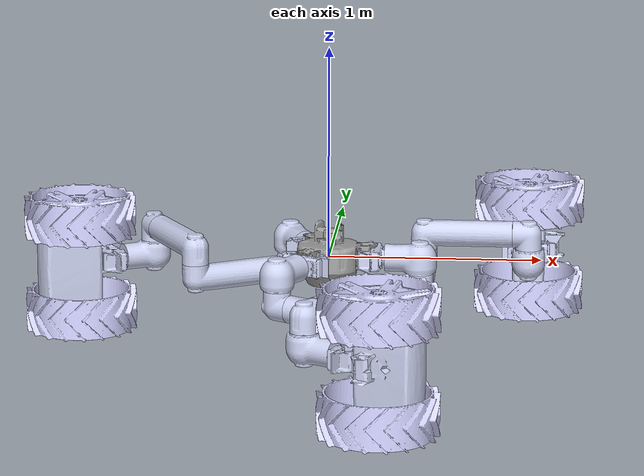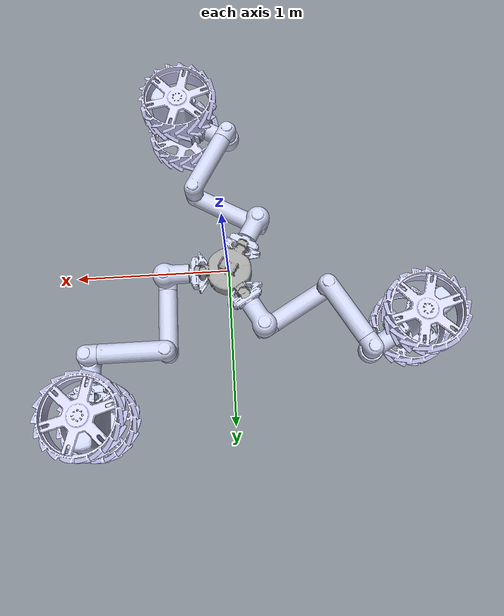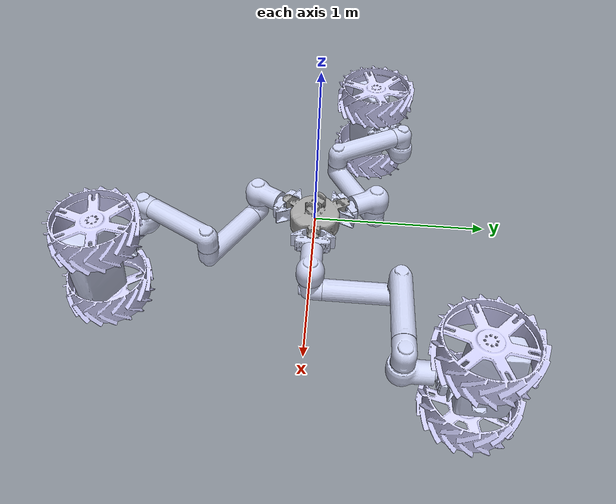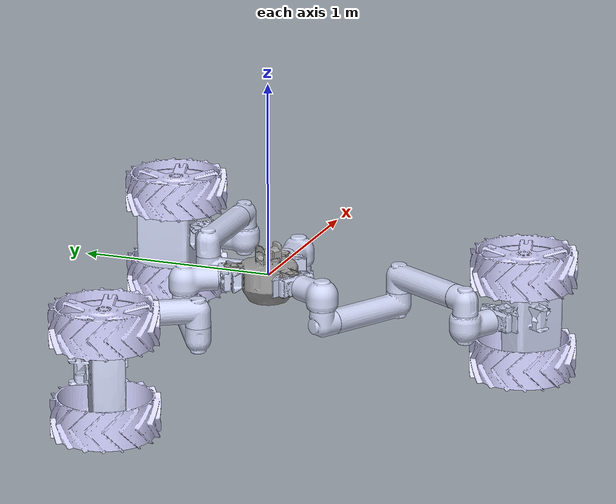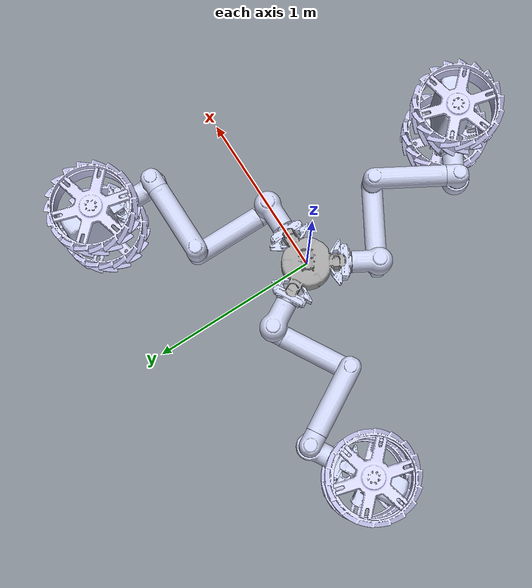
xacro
<?xml version="1.0" encoding="utf-8"?>
<robot name="hero_tricycle" xmlns:xacro="http://www.ros.org/wiki/xacro">
  <xacro:include filename="hero_tricycle_macro.xacro"></xacro:include>
  <xacro:arg default="1" name="front_limb"></xacro:arg>
  <xacro:arg default="2" name="left_limb"></xacro:arg>
  <xacro:arg default="3" name="right_limb"></xacro:arg>
  <xacro:arg default="11" name="front_wheel"></xacro:arg>
  <xacro:arg default="12" name="left_wheel"></xacro:arg>
  <xacro:arg default="13" name="right_wheel"></xacro:arg>
  <xacro:property name="front_limb_val" value="$(arg front_limb)"></xacro:property>
  <xacro:property name="left_limb_val" value="$(arg left_limb)"></xacro:property>
  <xacro:property name="right_limb_val" value="$(arg right_limb)"></xacro:property>
  <xacro:property name="front_wheel_val" value="$(arg front_wheel)"></xacro:property>
  <xacro:property name="left_wheel_val" value="$(arg left_wheel)"></xacro:property>
  <xacro:property name="right_wheel_val" value="$(arg right_wheel)"></xacro:property>
  <xacro:tricycle
  front_limb="${front_limb_val}"
  left_limb="${left_limb_val}"
  right_limb="${right_limb_val}"
  front_wheel="${front_wheel_val}"
  left_wheel="${left_wheel_val}"
  right_wheel="${right_wheel_val}"
  ></xacro:tricycle>

  <link name="base_link"/>
  <joint name="base_fix" type="fixed">
    <origin rpy="0 0 0" xyz="0 0 0"></origin>
    <parent link="base_link"></parent>
    <child link="tri_body"></child>
  </joint>
</robot>

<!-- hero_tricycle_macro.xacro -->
<robot name="hero_tricycle" xmlns:xacro="http://www.ros.org/wiki/xacro">
  <xacro:macro name="tricycle" params="front_limb:=1 left_limb:=2 right_limb:=3 front_wheel:=11 left_wheel:=12 right_wheel:=13">

    <xacro:property name="ThisPackage" value="ros2_m_hero_pkg" />
    <xacro:property name="MeshPath" value="package://${ThisPackage}/meshes" />
  <xacro:property name="body_radius" value="0.200"></xacro:property>
    <xacro:include filename="hero_minimal_macro.xacro"></xacro:include>

    <xacro:minimal limb="${front_limb}" wheel="${front_wheel}"></xacro:minimal>
    <xacro:minimal limb="${left_limb}" wheel="${left_wheel}"></xacro:minimal>
    <xacro:minimal limb="${right_limb}" wheel="${right_wheel}"></xacro:minimal>

    <link name="tri_body">
      <visual>
        <origin rpy="0 0 1.04" xyz="0 0 0"></origin>
        <geometry>
          <mesh filename="${MeshPath}/hero_hub_unit_opti.stl" scale="0.001 0.001 0.001"></mesh>
        </geometry>
        <material name="">
          <color rgba="0.627450980392157 0.627450980392157 0.627450980392157 1"></color>
        </material>
      </visual>
    </link>
    <link name="base_linkp"></link>
    <!-- fake end of gripper 3-2 -->
    <link name="d1"></link>
    <joint name="orient1" type="fixed">
      <origin rpy="${pi/2} 0 0" xyz="0 0 0"></origin>
      <parent link="tri_body"></parent>
      <child link="d1"></child>
    </joint>
    <link name="d1p"></link>
    <joint name="orient1p" type="fixed">
      <origin rpy="0 0 0" xyz="0 0 0"></origin>
      <parent link="d1p"></parent>
      <child link="base_linkp"></child>
    </joint>
    <link name="d2"></link>
    <joint name="orient2" type="fixed">
      <origin rpy="${pi/2} 0 ${2*pi/3}" xyz="0 0 0"></origin>
      <parent link="tri_body"></parent>
      <child link="d2"></child>
    </joint>
    <link name="d3"></link>
    <joint name="orient3" type="fixed">
      <origin rpy="${pi/2} 0 ${2*2*pi/3}" xyz="0 0 0"></origin>
      <parent link="tri_body"></parent>
      <child link="d3"></child>
    </joint>
    <joint name="fix1" type="fixed">
      <origin rpy="0 ${pi/2} 0" xyz="${body_radius} 0 0"></origin>
      <parent link="d1"></parent>
      <child link="leg${front_limb}gripper1"></child>
    </joint>
    <joint name="fix1p" type="fixed">
      <origin rpy="${pi} 0 ${pi}" xyz="${body_radius} 0 0"></origin>
      <parent link="leg${front_limb}gripper2_straight"></parent>
      <child link="d1p"></child>
    </joint>
    <joint name="fix2" type="fixed">
      <origin rpy="0 ${pi/2} 0" xyz="${body_radius} 0 0"></origin>
      <parent link="d3"></parent>
      <child link="leg${left_limb}gripper1"></child>
    </joint>
    <joint name="fix3" type="fixed">
      <origin rpy="0 ${pi/2} 0" xyz="${body_radius} 0 0"></origin>
      <parent link="d2"></parent>
      <child link="leg${right_limb}gripper1"></child>
    </joint>
  </xacro:macro>
</robot>

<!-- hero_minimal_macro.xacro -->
<robot name="hero_minimal" xmlns:xacro="http://www.ros.org/wiki/xacro">

  <xacro:macro name="minimal" params="limb:=1 wheel:=11">

  <xacro:include filename="hero_wheel_macro.xacro"></xacro:include>
  <xacro:property name="wheel_pre" value="wheel${wheel}_"></xacro:property>
  <xacro:add_wheel prefix="${wheel_pre}"></xacro:add_wheel>

  <xacro:include filename="hero_7dof_macro.xacro"></xacro:include>
  <xacro:property name="bridge_leg" value="${limb}"></xacro:property>
  <xacro:get_hero prefix="leg${limb}"></xacro:get_hero>

  <joint name="leg${bridge_leg}_${wheel_pre}_fix" type="fixed">
    <origin rpy="0 0 0" xyz="0 0 0"></origin>
    <parent link="leg${bridge_leg}gripper2"></parent>
    <child link="${wheel_pre}in"></child>
  </joint>
  </xacro:macro>
</robot>

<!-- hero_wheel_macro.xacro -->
<robot xmlns:xacro="http://www.ros.org/wiki/xacro" name="hero_wheel_module">

  <xacro:macro name="add_wheel" params="prefix:=11">

  <xacro:property name="ThisPackage" value="ros2_m_hero_pkg" />
  <xacro:property name="MeshPath" value="package://${ThisPackage}/meshes/hero_wheel_module/raw" />

  <xacro:property name="mesh_extension" value="STL" />

  <!-- PREFIX BELOW IS FOR TESTING. TODO: REMOVE -->

  <link name="${prefix}body">
    <inertial>
      <origin xyz="0.056173 0 -0.057088" rpy="0 0 0" />
      <mass value="10.64" />
      <inertia ixx="0.0025681" ixy="-4.8803E-05" ixz="-0.0005558" iyy="0.0040357" iyz="-4.8753E-05" izz="0.0025657" />
    </inertial>
    <visual>
      <origin xyz="0 0 0" rpy="0 0 0" />
      <geometry>
        <mesh filename="${MeshPath}/base_link.${mesh_extension}"/>
      </geometry>
      <material name="">
        <color rgba="0.79216 0.81961 0.93333 1" />
      </material>
    </visual>
    <collision>
      <origin xyz="0 0 0" rpy="0 0 0" />
      <geometry>
        <mesh filename="${MeshPath}/base_link.${mesh_extension}" />
      </geometry>
    </collision>
  </link>
  <link name="${prefix}left">
    <inertial>
      <origin xyz="0 0 -0.044735" rpy="0 0 0" />
      <mass value="5.7" />
      <inertia ixx="0.10868" ixy="-0.0011835" ixz="9.2131E-05" iyy="0.093396" iyz="0.0011967" izz="0.16995" />
    </inertial>
    <visual>
      <origin xyz="0 0 0" rpy="0 0 0" />
      <geometry>
        <mesh filename="${MeshPath}/wheel_left.${mesh_extension}" />
      </geometry>
      <material name="">
        <color rgba="0.82353 0.82353 1 1" />
      </material>
    </visual>
    <collision>
      <origin xyz="0 0 0" rpy="0 0 0" />
      <geometry>
        <mesh filename="${MeshPath}/wheel_left.${mesh_extension}" />
      </geometry>
    </collision>
  </link>
  <joint name="${prefix}left_joint" type="continuous">
  <origin xyz="0 -0.286 0" rpy="${pi/2} 0 0" />
    <parent link="${prefix}body" />
    <child link="${prefix}left" />
    <axis xyz="0 0 1" />
  </joint>
  <link name="${prefix}right">
    <inertial>
      <origin xyz="0 0 -0.044734" rpy="0 0 0" />
      <mass value="5.7" />
      <inertia ixx="0.089717" ixy="-1.4747E-08" ixz="6.8276E-09" iyy="0.089717" iyz="1.1155E-08" izz="0.14746" />
    </inertial>
    <visual>
      <origin xyz="0 0 0" rpy="0 0 0" />
      <geometry>
        <mesh filename="${MeshPath}/wheel_right.${mesh_extension}" />
      </geometry>
      <material name="">
        <color rgba="0.82353 0.82353 1 1" />
      </material>
    </visual>
    <collision>
      <origin xyz="0 0 0" rpy="0 0 0" />
      <geometry>
        <mesh filename="${MeshPath}/wheel_right.${mesh_extension}" />
      </geometry>
    </collision>
  </link>
  <joint name="${prefix}right_joint" type="continuous">
    <origin xyz="0 0.286 0" rpy="${-pi/2} 0 0" />
    <parent link="${prefix}body" />
    <child link="${prefix}right" />
    <axis xyz="0 0 1" />
  </joint>

  <link name="${prefix}in"/>
  <link name="${prefix}center"/>
  <link name="${prefix}out"/>

  <joint name="${prefix}fix" type="fixed">
  <origin xyz="0 0 -0.16" rpy="0 ${pi/4} ${0}"/>
    <parent link="${prefix}in"/>
    <child link="${prefix}body"/>
  </joint>

  <joint name="${prefix}cent_fix" type="fixed">
  <origin xyz="0 0 -0.16" rpy="0 0 0"/>
    <parent link="${prefix}in"/>
    <child link="${prefix}center"/>
  </joint>

  <joint name="${prefix}cen2out" type="fixed">
  <origin xyz="0.15 0 0" rpy="0 ${pi/2} 0"/>
    <parent link="${prefix}center"/>
    <child link="${prefix}out"/>
    <axis xyz="0 0 0"/>
  </joint>
  </xacro:macro>
</robot>

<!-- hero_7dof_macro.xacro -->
<robot xmlns:xacro="http://www.ros.org/wiki/xacro" name="hero_7dof_arm">

    <xacro:property name="ThisPackage" value="ros2_m_hero_pkg" />
    <xacro:property name="MeshPath" value="package://${ThisPackage}/meshes/hero_7dof_arm/optimised" />

    <xacro:property name="mesh_extension" value="STL" />

    <xacro:macro name="get_hero" params="prefix:=leg1">

    <xacro:property name="max_vel" value="0.15" />

    <!-- PREFIX BELOW IS FOR TESTING. TODO: REMOVE -->

    <link name="${prefix}gripper1">
    </link>

    <joint name="${prefix}gripper1_fixed_joint" type="fixed">
    <origin xyz="0 0 0.075" rpy="${pi} 0 ${0}" />
        <parent link="${prefix}gripper1" />
        <child link="${prefix}gripper1_base"/>
    </joint>

    <link name="${prefix}gripper1_base">
        <inertial>
            <origin xyz="0 0 0.034092" rpy="0 0 0" />
            <mass value="1" />
            <inertia ixx="0.00037818" ixy="-7.3501E-08" ixz="9.8348E-07" iyy="0.0011423" iyz="1.9396E-08" izz="0.0012608" />
        </inertial>
        <visual>
            <origin xyz="0 0 0.01" rpy="0 0 0" />
            <geometry>
                <mesh filename="${MeshPath}/gripper_base.${mesh_extension}" />
            </geometry>
            <material name="">
                <color rgba="0.79216 0.81961 0.93333 1" />
            </material>
        </visual>
        <collision>
            <origin xyz="0 0 0.01" rpy="0 0 0" />
            <geometry>
                <mesh filename="${MeshPath}/gripper_base.${mesh_extension}" />
            </geometry>
        </collision>
    </link>
    <link name="${prefix}gripper1_jaw_left">
        <inertial>
            <origin xyz="0.0085205 -0.015122 -0.048716" rpy="0 0 0" />
            <mass value="0.57" />
            <inertia ixx="0.000401" ixy="3.9995E-05" ixz="8.1004E-05" iyy="0.00040867" iyz="-6.6046E-05" izz="0.0002301" />
        </inertial>
        <visual>
            <origin xyz="0 0 0" rpy="0 0 0" />
            <geometry>
                <mesh filename="${MeshPath}/gripper_jaw_left.${mesh_extension}" />
            </geometry>
            <material name="">
                <color rgba="0.79216 0.81961 0.93333 1" />
            </material>
        </visual>
        <collision>
            <origin xyz="0 0 0" rpy="0 0 0" />
            <geometry>
                <mesh filename="${MeshPath}/gripper_jaw_left.${mesh_extension}" />
            </geometry>
        </collision>
    </link>
    <joint name="${prefix}grip1" type="prismatic">
        <origin xyz="0 -0.025 0.075" rpy="${-pi/2} ${-pi/2} ${-pi/2}" />
        <parent link="${prefix}gripper1_base" />
        <child link="${prefix}gripper1_jaw_left" />
        <axis xyz="0 0 -1" />
        <limit lower="-9999" upper="9999" effort="9999" velocity="${max_vel}" />
    </joint>

    <link name="${prefix}gripper1_jaw_right">
        <inertial>
            <origin xyz="0.0084246 -0.015024 -0.048812" rpy="0 0 0" />
            <mass value="0.57" />
            <inertia ixx="0.00040173" ixy="4.0342E-05" ixz="8.0663E-05" iyy="0.00040938" iyz="-6.5693E-05" izz="0.00023081" />
        </inertial>
        <visual>
            <origin xyz="0 0 0" rpy="0 0 0" />
            <geometry>
                <mesh filename="${MeshPath}/gripper_jaw_right.${mesh_extension}" />
            </geometry>
            <material name="">
                <color rgba="0.79216 0.81961 0.93333 1" />
            </material>
        </visual>
        <collision>
            <origin xyz="0 0 0" rpy="0 0 0" />
            <geometry>
                <mesh filename="${MeshPath}/gripper_jaw_right.${mesh_extension}" />
            </geometry>
        </collision>
    </link>
    <joint name="${prefix}grip1bis" type="prismatic">
        <origin xyz="0 0.025 0.075" rpy="${pi/2} ${-pi/2} ${-pi/2}" />
        <parent link="${prefix}gripper1_base" />
        <child link="${prefix}gripper1_jaw_right" />
        <axis xyz="0 0 -1" />
        <limit lower="-9999" upper="9999" effort="9999" velocity="${max_vel}" />
        <mimic joint="${prefix}grip1" multiplier="1" offset="0" />
    </joint>

    <link name="${prefix}link1">
        <inertial>
            <origin xyz="0 -0.026961 0.07079" rpy="0 0 0" />
            <mass value="2.28" />
            <inertia ixx="0.00036861" ixy="-1.2304E-10" ixz="-1.7786E-19" iyy="0.00051212" iyz="5.2003E-19" izz="0.00058121" />
        </inertial>
        <visual>
            <origin xyz="0 0 0" rpy="0 0 0" />
            <geometry>
                <mesh filename="${MeshPath}/link1.${mesh_extension}" />
            </geometry>
            <material name="">
                <color rgba="0.79216 0.81961 0.93333 1" />
            </material>
        </visual>
        <collision>
            <origin xyz="0 0 0" rpy="0 0 0" />
            <geometry>
                <mesh filename="${MeshPath}/link1.${mesh_extension}" />
            </geometry>
        </collision>
    </link>
    <joint name="${prefix}joint1" type="continuous">
    <origin xyz="0 0 0.011" rpy="${pi} 0 ${0}" />
        <parent link="${prefix}gripper1_base" />
        <child link="${prefix}link1" />
        <axis xyz="0 0 1" />
        <limit lower="-9999" upper="9999" effort="9999" velocity="${max_vel}" />
    </joint>
    <link name="${prefix}link2">
        <inertial>
            <origin xyz="0.032078 0 0.041065" rpy="0 0 0" />
            <mass value="1.93" />
            <inertia ixx="0.00044657" ixy="7.7738E-21" ixz="2.4867E-23" iyy="0.00030306" iyz="4.0296E-20" izz="0.00045568" />
        </inertial>
        <visual>
            <origin xyz="0 0 0" rpy="0 0 0" />
            <geometry>
                <mesh filename="${MeshPath}/link2.${mesh_extension}" />
            </geometry>
            <material name="">
                <color rgba="0.79216 0.81961 0.93333 1" />
            </material>
        </visual>
        <collision>
            <origin xyz="0 0 0" rpy="0 0 0" />
            <geometry>
                <mesh filename="${MeshPath}/link2.${mesh_extension}" />
            </geometry>
        </collision>
    </link>
    <joint name="${prefix}joint2" type="continuous">
        <origin xyz="0 -0.0729017560494423 0.1646" rpy="${pi/2} 0 0" />
        <parent link="${prefix}link1" />
        <child link="${prefix}link2" />
        <axis xyz="0 0 1" />
        <limit lower="-9999" upper="9999" effort="9999" velocity="${max_vel}" />
    </joint>
    <link name="${prefix}link3">
        <inertial>
            <origin xyz="0 0.032 0.21559" rpy="0 0 0" />
            <mass value="4.82" />
            <inertia ixx="0.00043746" ixy="-6.0916E-09" ixz="5.7927E-15" iyy="0.00064389" iyz="-1.5683E-11" izz="0.00065006" />
        </inertial>
        <visual>
            <origin xyz="0 0 0" rpy="0 0 0" />
            <geometry>
                <mesh filename="${MeshPath}/link3.${mesh_extension}" />
            </geometry>
            <material name="">
                <color rgba="0.79216 0.81961 0.93333 1" />
            </material>
        </visual>
        <collision>
            <origin xyz="0 0 0" rpy="0 0 0" />
            <geometry>
                <mesh filename="${MeshPath}/link3.${mesh_extension}" />
            </geometry>
        </collision>
    </link>
    <joint name="${prefix}joint3" type="continuous">
        <origin xyz="0.0728992993685218 0 0.0794000460598" rpy="${-pi/2} 0 ${-pi/2}" />
        <parent link="${prefix}link2" />
        <child link="${prefix}link3" />
        <axis xyz="0 0 1" />
        <limit lower="-9999" upper="9999" effort="9999" velocity="${max_vel}" />
    </joint>
    <link name="${prefix}link4">
        <inertial>
            <origin xyz="0 0.21057 -0.043825" rpy="0 0 0" />
            <mass value="4.41" />
            <inertia ixx="0.00044447" ixy="7.218E-10" ixz="2.0385E-10" iyy="0.00065707" iyz="2.1592E-11" izz="0.00065707" />
        </inertial>
        <visual>
            <origin xyz="0 0 0" rpy="0 0 0" />
            <geometry>
                <mesh filename="${MeshPath}/link4.${mesh_extension}" />
            </geometry>
            <material name="">
                <color rgba="0.79216 0.81961 0.93333 1" />
            </material>
        </visual>
        <collision>
            <origin xyz="0 0 0" rpy="0 0 0" />
            <geometry>
                <mesh filename="${MeshPath}/link4.${mesh_extension}" />
            </geometry>
        </collision>
    </link>
    <joint name="${prefix}joint4" type="continuous">
        <origin xyz="0 0.073 0.43" rpy="${pi/2} ${-pi/2} 0" />
        <parent link="${prefix}link3" />
        <child link="${prefix}link4" />
        <axis xyz="0 0 -1" />
        <limit lower="-9999" upper="9999" effort="9999" velocity="${max_vel}" />
    </joint>
    <link name="${prefix}link5">
        <inertial>
            <origin xyz="0 -0.032079 0.041064" rpy="0 0 0" />
            <mass value="1.93" />
            <inertia ixx="0.00030306" ixy="-1.5056E-14" ixz="5.1818E-10" iyy="0.00044657" iyz="-2.6967E-10" izz="0.00045568" />
        </inertial>
        <visual>
            <origin xyz="0 0 0" rpy="0 0 0" />
            <geometry>
                <mesh filename="${MeshPath}/link5.${mesh_extension}" />
            </geometry>
            <material name="">
                <color rgba="0.79216 0.81961 0.93333 1" />
            </material>
        </visual>
        <collision>
            <origin xyz="0 0 0" rpy="0 0 0" />
            <geometry>
                <mesh filename="${MeshPath}/link5.${mesh_extension}" />
            </geometry>
        </collision>
    </link>
    <joint name="${prefix}joint5" type="continuous">
        <origin xyz="0 0.43 -0.0794" rpy="${-pi/2} 0 0" />
        <parent link="${prefix}link4" />
        <child link="${prefix}link5" />
        <axis xyz="0 0 1" />
        <limit lower="-9999" upper="9999" effort="9999" velocity="${max_vel}" />
    </joint>
    <link name="${prefix}link6">
        <inertial>
            <origin xyz="0.09381 0 0.045941" rpy="0 0 0" />
            <mass value="2.28" />
            <inertia ixx="0.00058121" ixy="1.0036E-09" ixz="1.3853E-16" iyy="0.00036861" iyz="3.8298E-21" izz="0.00051212" />
        </inertial>
        <visual>
            <origin xyz="0 0 0" rpy="0 0 0" />
            <geometry>
                <mesh filename="${MeshPath}/link6.${mesh_extension}" />
            </geometry>
            <material name="">
                <color rgba="0.79216 0.81961 0.93333 1" />
            </material>
        </visual>
        <collision>
            <origin xyz="0 0 0" rpy="0 0 0" />
            <geometry>
                <mesh filename="${MeshPath}/link6.${mesh_extension}" />
            </geometry>
        </collision>
    </link>
    <joint name="${prefix}joint6" type="continuous">
        <origin xyz="0 -0.073 0.0793978875028697" rpy="${pi/2} 0 0" />
        <parent link="${prefix}link5" />
        <child link="${prefix}link6" />
        <axis xyz="0 0 1" />
        <limit lower="-9999" upper="9999" effort="9999" velocity="${max_vel}" />
    </joint>
    <joint name="${prefix}joint7" type="continuous">
    <origin xyz="0.1646 0 0.072902" rpy="${-pi/2} 0 ${-pi/2}" />
        <parent link="${prefix}link6" />
        <child link="${prefix}gripper2_base" />
        <axis xyz="0 0 1" />
        <limit lower="-9999" upper="9999" effort="9999" velocity="${max_vel}" />
    </joint>
    <link name="${prefix}gripper2_base">
        <inertial>
            <origin xyz="0 0 0.034092" rpy="0 0 0" />
            <mass value="1" />
            <inertia ixx="0.00037818" ixy="-7.3501E-08" ixz="9.8348E-07" iyy="0.0011423" iyz="1.9396E-08" izz="0.0012608" />
        </inertial>
        <visual>
            <origin xyz="0 0 0" rpy="0 0 0" />
            <geometry>
                <mesh filename="${MeshPath}/gripper_base.${mesh_extension}" />
            </geometry>
            <material name="">
                <color rgba="0.79216 0.81961 0.93333 1" />
            </material>
        </visual>
        <collision>
            <origin xyz="0 0 0" rpy="0 0 0" />
            <geometry>
                <mesh filename="${MeshPath}/gripper_base.${mesh_extension}" />
            </geometry>
        </collision>
    </link>
    <link name="${prefix}gripper2_jaw_left">
        <inertial>
            <origin xyz="0.0085205 -0.015122 -0.048716" rpy="0 0 0" />
            <mass value="0.57" />
            <inertia ixx="0.000401" ixy="3.9995E-05" ixz="8.1004E-05" iyy="0.00040867" iyz="-6.6046E-05" izz="0.0002301" />
        </inertial>
        <visual>
            <origin xyz="0 0 0" rpy="0 0 0" />
            <geometry>
                <mesh filename="${MeshPath}/gripper_jaw_left.${mesh_extension}" />
            </geometry>
            <material name="">
                <color rgba="0.79216 0.81961 0.93333 1" />
            </material>
        </visual>
        <collision>
            <origin xyz="0 0 0" rpy="0 0 0" />
            <geometry>
                <mesh filename="${MeshPath}/gripper_jaw_left.${mesh_extension}" />
            </geometry>
        </collision>
    </link>
    <joint name="${prefix}grip2" type="prismatic">
        <origin xyz="0 -0.025 0.065" rpy="${-pi/2} ${-pi/2} ${-pi/2}" />
        <parent link="${prefix}gripper2_base" />
        <child link="${prefix}gripper2_jaw_left" />
        <axis xyz="0 0 -1" />
        <limit lower="-9999" upper="9999" effort="9999" velocity="${max_vel}" />
    </joint>
    <link name="${prefix}gripper2_jaw_right">
        <inertial>
            <origin xyz="0.0084246 -0.015024 -0.048812" rpy="0 0 0" />
            <mass value="0.57" />
            <inertia ixx="0.00040173" ixy="4.0342E-05" ixz="8.0663E-05" iyy="0.00040938" iyz="-6.5693E-05" izz="0.00023081" />
        </inertial>
        <visual>
            <origin xyz="0 0 0" rpy="0 0 0" />
            <geometry>
                <mesh filename="${MeshPath}/gripper_jaw_right.${mesh_extension}" />
            </geometry>
            <material name="">
                <color rgba="0.79216 0.81961 0.93333 1" />
            </material>
        </visual>
        <collision>
            <origin xyz="0 0 0" rpy="0 0 0" />
            <geometry>
                <mesh filename="${MeshPath}/gripper_jaw_right.${mesh_extension}" />
            </geometry>
        </collision>
    </link>
    <joint name="${prefix}grip2bis" type="prismatic">
        <origin xyz="0 0.025 0.065" rpy="${pi/2} ${-pi/2} ${-pi/2}" />
        <parent link="${prefix}gripper2_base" />
        <child link="${prefix}gripper2_jaw_right" />
        <axis xyz="0 0 -1" />
        <limit lower="-9999" upper="9999" effort="9999" velocity="${max_vel}" />
        <mimic joint="${prefix}grip2" multiplier="1" offset="0" />
    </joint>
    <link name="${prefix}gripper2">
    </link>

    <joint name="${prefix}gripper2_fixed_joint" type="fixed">
    <origin xyz="0 0 0.065" rpy="0 ${pi} ${0}" />
        <parent link="${prefix}gripper2_base" />
        <child link="${prefix}gripper2" />
    </joint>

    <link name="${prefix}gripper2_straight">
    </link>
    <joint name="${prefix}gripper2_fix_to_straight" type="fixed">
    <origin xyz="0 0 0" rpy="0 ${pi/2} 0" />
        <parent link="${prefix}gripper2" />
        <child link="${prefix}gripper2_straight" />
    </joint>

    </xacro:macro>
</robot>
